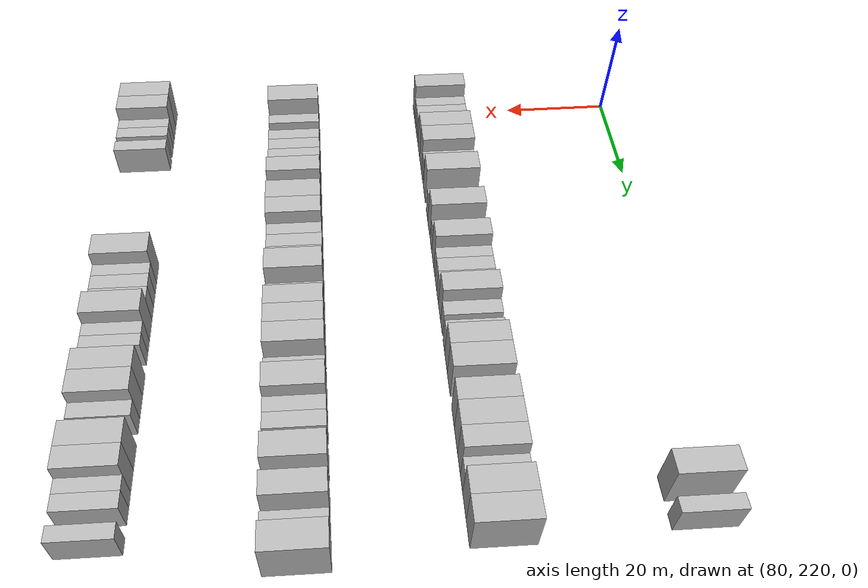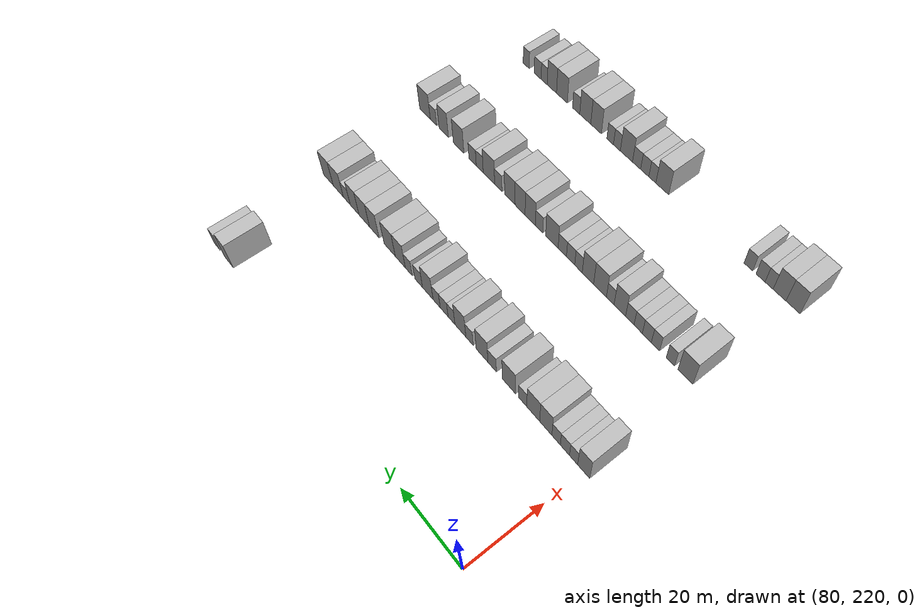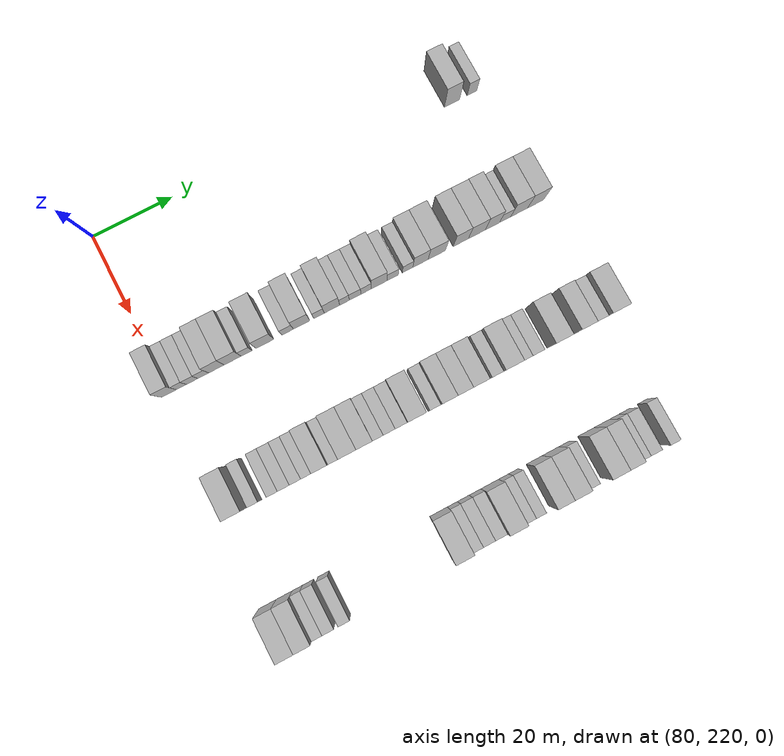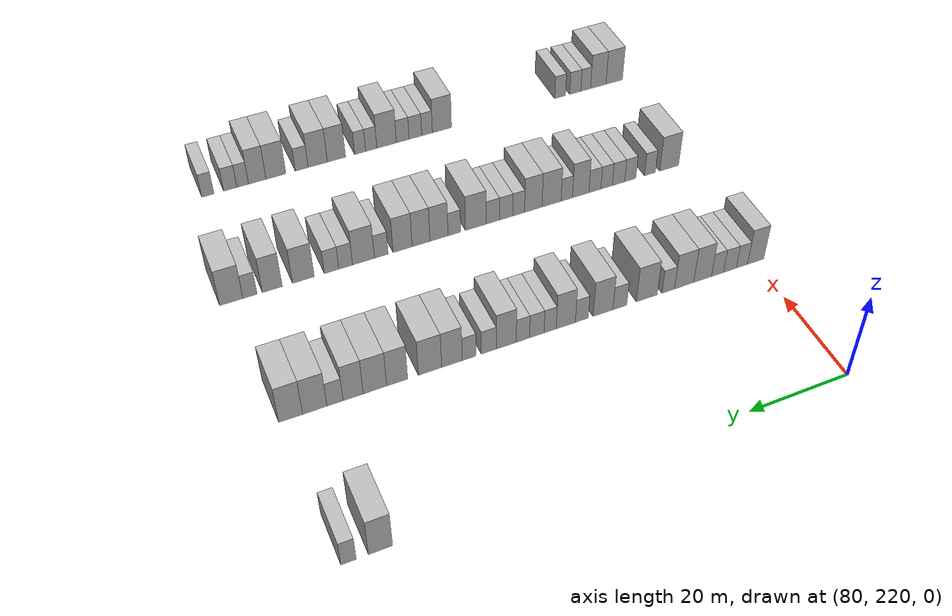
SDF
<sdf version="1.6">
 <world name="default">
  <model name="building_679">
   <static>1</static>
   <pose>85.0000 307.0177 0 0.000000 0.000000 0.000000</pose>
   <link name="link">
    <pose>0 0 4.50 0 0 0</pose>
    <collision name="collision"><geometry><box><size>10.0000 4.0016 9.0000</size></box></geometry></collision>
    <visual name="visual">
     <cast_shadows>0</cast_shadows>
     <geometry><box><size>10.0000 4.0016 9.0000</size></box></geometry>
     <material>
      <script>
       <uri>model://HANNAS_wall/materials/scripts</uri>
       <uri>model://HANNAS_wall/materials/textures</uri>
       <name>vrc/HANNAS_wall</name>
      </script>
     </material>
    </visual>
   </link>
  </model>
  <model name="building_680">
   <static>1</static>
   <pose>85.0000 312.2720 0 0.000000 0.000000 0.000000</pose>
   <link name="link">
    <pose>0 0 3.00 0 0 0</pose>
    <collision name="collision"><geometry><box><size>10.0000 2.5070 6.0000</size></box></geometry></collision>
    <visual name="visual">
     <cast_shadows>0</cast_shadows>
     <geometry><box><size>10.0000 2.5070 6.0000</size></box></geometry>
     <material>
      <script>
       <uri>model://HANNAS_wall/materials/scripts</uri>
       <uri>model://HANNAS_wall/materials/textures</uri>
       <name>vrc/HANNAS_wall</name>
      </script>
     </material>
    </visual>
   </link>
  </model>
  <model name="building_887">
   <static>1</static>
   <pose>115.0000 219.9786 0 0.000000 0.000000 0.000000</pose>
   <link name="link">
    <pose>0 0 4.50 0 0 0</pose>
    <collision name="collision"><geometry><box><size>10.0000 3.6479 9.0000</size></box></geometry></collision>
    <visual name="visual">
     <cast_shadows>0</cast_shadows>
     <geometry><box><size>10.0000 3.6479 9.0000</size></box></geometry>
     <material>
      <script>
       <uri>model://HANNAS_wall/materials/scripts</uri>
       <uri>model://HANNAS_wall/materials/textures</uri>
       <name>vrc/HANNAS_wall</name>
      </script>
     </material>
    </visual>
   </link>
  </model>
  <model name="building_888">
   <static>1</static>
   <pose>115.0000 223.0383 0 0.000000 0.000000 0.000000</pose>
   <link name="link">
    <pose>0 0 3.00 0 0 0</pose>
    <collision name="collision"><geometry><box><size>10.0000 2.4716 6.0000</size></box></geometry></collision>
    <visual name="visual">
     <cast_shadows>0</cast_shadows>
     <geometry><box><size>10.0000 2.4716 6.0000</size></box></geometry>
     <material>
      <script>
       <uri>model://HANNAS_wall/materials/scripts</uri>
       <uri>model://HANNAS_wall/materials/textures</uri>
       <name>vrc/HANNAS_wall</name>
      </script>
     </material>
    </visual>
   </link>
  </model>
  <model name="building_889">
   <static>1</static>
   <pose>115.0000 225.6785 0 0.000000 0.000000 0.000000</pose>
   <link name="link">
    <pose>0 0 3.00 0 0 0</pose>
    <collision name="collision"><geometry><box><size>10.0000 2.8088 6.0000</size></box></geometry></collision>
    <visual name="visual">
     <cast_shadows>0</cast_shadows>
     <geometry><box><size>10.0000 2.8088 6.0000</size></box></geometry>
     <material>
      <script>
       <uri>model://HANNAS_wall/materials/scripts</uri>
       <uri>model://HANNAS_wall/materials/textures</uri>
       <name>vrc/HANNAS_wall</name>
      </script>
     </material>
    </visual>
   </link>
  </model>
  <model name="building_890">
   <static>1</static>
   <pose>115.0000 228.3978 0 0.000000 0.000000 0.000000</pose>
   <link name="link">
    <pose>0 0 3.00 0 0 0</pose>
    <collision name="collision"><geometry><box><size>10.0000 2.6297 6.0000</size></box></geometry></collision>
    <visual name="visual">
     <cast_shadows>0</cast_shadows>
     <geometry><box><size>10.0000 2.6297 6.0000</size></box></geometry>
     <material>
      <script>
       <uri>model://HANNAS_wall/materials/scripts</uri>
       <uri>model://HANNAS_wall/materials/textures</uri>
       <name>vrc/HANNAS_wall</name>
      </script>
     </material>
    </visual>
   </link>
  </model>
  <model name="building_891">
   <static>1</static>
   <pose>115.0000 231.6309 0 0.000000 0.000000 0.000000</pose>
   <link name="link">
    <pose>0 0 4.50 0 0 0</pose>
    <collision name="collision"><geometry><box><size>10.0000 3.8366 9.0000</size></box></geometry></collision>
    <visual name="visual">
     <cast_shadows>0</cast_shadows>
     <geometry><box><size>10.0000 3.8366 9.0000</size></box></geometry>
     <material>
      <script>
       <uri>model://HANNAS_wall/materials/scripts</uri>
       <uri>model://HANNAS_wall/materials/textures</uri>
       <name>vrc/HANNAS_wall</name>
      </script>
     </material>
    </visual>
   </link>
  </model>
  <model name="building_892">
   <static>1</static>
   <pose>115.0000 235.6198 0 0.000000 0.000000 0.000000</pose>
   <link name="link">
    <pose>0 0 4.50 0 0 0</pose>
    <collision name="collision"><geometry><box><size>10.0000 4.1411 9.0000</size></box></geometry></collision>
    <visual name="visual">
     <cast_shadows>0</cast_shadows>
     <geometry><box><size>10.0000 4.1411 9.0000</size></box></geometry>
     <material>
      <script>
       <uri>model://HANNAS_wall/materials/scripts</uri>
       <uri>model://HANNAS_wall/materials/textures</uri>
       <name>vrc/HANNAS_wall</name>
      </script>
     </material>
    </visual>
   </link>
  </model>
  <model name="building_893">
   <static>1</static>
   <pose>115.0000 239.0259 0 0.000000 0.000000 0.000000</pose>
   <link name="link">
    <pose>0 0 3.00 0 0 0</pose>
    <collision name="collision"><geometry><box><size>10.0000 2.6713 6.0000</size></box></geometry></collision>
    <visual name="visual">
     <cast_shadows>0</cast_shadows>
     <geometry><box><size>10.0000 2.6713 6.0000</size></box></geometry>
     <material>
      <script>
       <uri>model://HANNAS_wall/materials/scripts</uri>
       <uri>model://HANNAS_wall/materials/textures</uri>
       <name>vrc/HANNAS_wall</name>
      </script>
     </material>
    </visual>
   </link>
  </model>
  <model name="building_894">
   <static>1</static>
   <pose>115.0000 243.5600 0 0.000000 0.000000 0.000000</pose>
   <link name="link">
    <pose>0 0 4.50 0 0 0</pose>
    <collision name="collision"><geometry><box><size>10.0000 4.3968 9.0000</size></box></geometry></collision>
    <visual name="visual">
     <cast_shadows>0</cast_shadows>
     <geometry><box><size>10.0000 4.3968 9.0000</size></box></geometry>
     <material>
      <script>
       <uri>model://HANNAS_wall/materials/scripts</uri>
       <uri>model://HANNAS_wall/materials/textures</uri>
       <name>vrc/HANNAS_wall</name>
      </script>
     </material>
    </visual>
   </link>
  </model>
  <model name="building_895">
   <static>1</static>
   <pose>115.0000 249.1997 0 0.000000 0.000000 0.000000</pose>
   <link name="link">
    <pose>0 0 3.00 0 0 0</pose>
    <collision name="collision"><geometry><box><size>10.0000 2.8827 6.0000</size></box></geometry></collision>
    <visual name="visual">
     <cast_shadows>0</cast_shadows>
     <geometry><box><size>10.0000 2.8827 6.0000</size></box></geometry>
     <material>
      <script>
       <uri>model://HANNAS_wall/materials/scripts</uri>
       <uri>model://HANNAS_wall/materials/textures</uri>
       <name>vrc/HANNAS_wall</name>
      </script>
     </material>
    </visual>
   </link>
  </model>
  <model name="building_896">
   <static>1</static>
   <pose>115.0000 252.6836 0 0.000000 0.000000 0.000000</pose>
   <link name="link">
    <pose>0 0 4.50 0 0 0</pose>
    <collision name="collision"><geometry><box><size>10.0000 4.0851 9.0000</size></box></geometry></collision>
    <visual name="visual">
     <cast_shadows>0</cast_shadows>
     <geometry><box><size>10.0000 4.0851 9.0000</size></box></geometry>
     <material>
      <script>
       <uri>model://HANNAS_wall/materials/scripts</uri>
       <uri>model://HANNAS_wall/materials/textures</uri>
       <name>vrc/HANNAS_wall</name>
      </script>
     </material>
    </visual>
   </link>
  </model>
  <model name="building_897">
   <static>1</static>
   <pose>115.0000 257.0357 0 0.000000 0.000000 0.000000</pose>
   <link name="link">
    <pose>0 0 3.00 0 0 0</pose>
    <collision name="collision"><geometry><box><size>10.0000 2.6191 6.0000</size></box></geometry></collision>
    <visual name="visual">
     <cast_shadows>0</cast_shadows>
     <geometry><box><size>10.0000 2.6191 6.0000</size></box></geometry>
     <material>
      <script>
       <uri>model://HANNAS_wall/materials/scripts</uri>
       <uri>model://HANNAS_wall/materials/textures</uri>
       <name>vrc/HANNAS_wall</name>
      </script>
     </material>
    </visual>
   </link>
  </model>
  <model name="building_898">
   <static>1</static>
   <pose>115.0000 260.2879 0 0.000000 0.000000 0.000000</pose>
   <link name="link">
    <pose>0 0 4.50 0 0 0</pose>
    <collision name="collision"><geometry><box><size>10.0000 3.8853 9.0000</size></box></geometry></collision>
    <visual name="visual">
     <cast_shadows>0</cast_shadows>
     <geometry><box><size>10.0000 3.8853 9.0000</size></box></geometry>
     <material>
      <script>
       <uri>model://HANNAS_wall/materials/scripts</uri>
       <uri>model://HANNAS_wall/materials/textures</uri>
       <name>vrc/HANNAS_wall</name>
      </script>
     </material>
    </visual>
   </link>
  </model>
  <model name="building_899">
   <static>1</static>
   <pose>115.0000 263.4455 0 0.000000 0.000000 0.000000</pose>
   <link name="link">
    <pose>0 0 3.00 0 0 0</pose>
    <collision name="collision"><geometry><box><size>10.0000 2.4300 6.0000</size></box></geometry></collision>
    <visual name="visual">
     <cast_shadows>0</cast_shadows>
     <geometry><box><size>10.0000 2.4300 6.0000</size></box></geometry>
     <material>
      <script>
       <uri>model://HANNAS_wall/materials/scripts</uri>
       <uri>model://HANNAS_wall/materials/textures</uri>
       <name>vrc/HANNAS_wall</name>
      </script>
     </material>
    </visual>
   </link>
  </model>
  <model name="building_900">
   <static>1</static>
   <pose>115.0000 266.1091 0 0.000000 0.000000 0.000000</pose>
   <link name="link">
    <pose>0 0 3.00 0 0 0</pose>
    <collision name="collision"><geometry><box><size>10.0000 2.8973 6.0000</size></box></geometry></collision>
    <visual name="visual">
     <cast_shadows>0</cast_shadows>
     <geometry><box><size>10.0000 2.8973 6.0000</size></box></geometry>
     <material>
      <script>
       <uri>model://HANNAS_wall/materials/scripts</uri>
       <uri>model://HANNAS_wall/materials/textures</uri>
       <name>vrc/HANNAS_wall</name>
      </script>
     </material>
    </visual>
   </link>
  </model>
  <model name="building_901">
   <static>1</static>
   <pose>115.0000 268.8768 0 0.000000 0.000000 0.000000</pose>
   <link name="link">
    <pose>0 0 3.00 0 0 0</pose>
    <collision name="collision"><geometry><box><size>10.0000 2.6381 6.0000</size></box></geometry></collision>
    <visual name="visual">
     <cast_shadows>0</cast_shadows>
     <geometry><box><size>10.0000 2.6381 6.0000</size></box></geometry>
     <material>
      <script>
       <uri>model://HANNAS_wall/materials/scripts</uri>
       <uri>model://HANNAS_wall/materials/textures</uri>
       <name>vrc/HANNAS_wall</name>
      </script>
     </material>
    </visual>
   </link>
  </model>
  <model name="building_902">
   <static>1</static>
   <pose>115.0000 272.1591 0 0.000000 0.000000 0.000000</pose>
   <link name="link">
    <pose>0 0 4.50 0 0 0</pose>
    <collision name="collision"><geometry><box><size>10.0000 3.9265 9.0000</size></box></geometry></collision>
    <visual name="visual">
     <cast_shadows>0</cast_shadows>
     <geometry><box><size>10.0000 3.9265 9.0000</size></box></geometry>
     <material>
      <script>
       <uri>model://HANNAS_wall/materials/scripts</uri>
       <uri>model://HANNAS_wall/materials/textures</uri>
       <name>vrc/HANNAS_wall</name>
      </script>
     </material>
    </visual>
   </link>
  </model>
  <model name="building_903">
   <static>1</static>
   <pose>115.0000 275.5704 0 0.000000 0.000000 0.000000</pose>
   <link name="link">
    <pose>0 0 3.00 0 0 0</pose>
    <collision name="collision"><geometry><box><size>10.0000 2.8961 6.0000</size></box></geometry></collision>
    <visual name="visual">
     <cast_shadows>0</cast_shadows>
     <geometry><box><size>10.0000 2.8961 6.0000</size></box></geometry>
     <material>
      <script>
       <uri>model://HANNAS_wall/materials/scripts</uri>
       <uri>model://HANNAS_wall/materials/textures</uri>
       <name>vrc/HANNAS_wall</name>
      </script>
     </material>
    </visual>
   </link>
  </model>
  <model name="building_904">
   <static>1</static>
   <pose>115.0000 279.3570 0 0.000000 0.000000 0.000000</pose>
   <link name="link">
    <pose>0 0 3.00 0 0 0</pose>
    <collision name="collision"><geometry><box><size>10.0000 2.6772 6.0000</size></box></geometry></collision>
    <visual name="visual">
     <cast_shadows>0</cast_shadows>
     <geometry><box><size>10.0000 2.6772 6.0000</size></box></geometry>
     <material>
      <script>
       <uri>model://HANNAS_wall/materials/scripts</uri>
       <uri>model://HANNAS_wall/materials/textures</uri>
       <name>vrc/HANNAS_wall</name>
      </script>
     </material>
    </visual>
   </link>
  </model>
  <model name="building_905">
   <static>1</static>
   <pose>115.0000 282.6576 0 0.000000 0.000000 0.000000</pose>
   <link name="link">
    <pose>0 0 4.50 0 0 0</pose>
    <collision name="collision"><geometry><box><size>10.0000 3.9240 9.0000</size></box></geometry></collision>
    <visual name="visual">
     <cast_shadows>0</cast_shadows>
     <geometry><box><size>10.0000 3.9240 9.0000</size></box></geometry>
     <material>
      <script>
       <uri>model://HANNAS_wall/materials/scripts</uri>
       <uri>model://HANNAS_wall/materials/textures</uri>
       <name>vrc/HANNAS_wall</name>
      </script>
     </material>
    </visual>
   </link>
  </model>
  <model name="building_906">
   <static>1</static>
   <pose>115.0000 286.8276 0 0.000000 0.000000 0.000000</pose>
   <link name="link">
    <pose>0 0 4.50 0 0 0</pose>
    <collision name="collision"><geometry><box><size>10.0000 4.4159 9.0000</size></box></geometry></collision>
    <visual name="visual">
     <cast_shadows>0</cast_shadows>
     <geometry><box><size>10.0000 4.4159 9.0000</size></box></geometry>
     <material>
      <script>
       <uri>model://HANNAS_wall/materials/scripts</uri>
       <uri>model://HANNAS_wall/materials/textures</uri>
       <name>vrc/HANNAS_wall</name>
      </script>
     </material>
    </visual>
   </link>
  </model>
  <model name="building_907">
   <static>1</static>
   <pose>115.0000 292.9873 0 0.000000 0.000000 0.000000</pose>
   <link name="link">
    <pose>0 0 4.50 0 0 0</pose>
    <collision name="collision"><geometry><box><size>10.0000 3.9035 9.0000</size></box></geometry></collision>
    <visual name="visual">
     <cast_shadows>0</cast_shadows>
     <geometry><box><size>10.0000 3.9035 9.0000</size></box></geometry>
     <material>
      <script>
       <uri>model://HANNAS_wall/materials/scripts</uri>
       <uri>model://HANNAS_wall/materials/textures</uri>
       <name>vrc/HANNAS_wall</name>
      </script>
     </material>
    </visual>
   </link>
  </model>
  <model name="building_908">
   <static>1</static>
   <pose>115.0000 297.1024 0 0.000000 0.000000 0.000000</pose>
   <link name="link">
    <pose>0 0 4.50 0 0 0</pose>
    <collision name="collision"><geometry><box><size>10.0000 4.3265 9.0000</size></box></geometry></collision>
    <visual name="visual">
     <cast_shadows>0</cast_shadows>
     <geometry><box><size>10.0000 4.3265 9.0000</size></box></geometry>
     <material>
      <script>
       <uri>model://HANNAS_wall/materials/scripts</uri>
       <uri>model://HANNAS_wall/materials/textures</uri>
       <name>vrc/HANNAS_wall</name>
      </script>
     </material>
    </visual>
   </link>
  </model>
  <model name="building_909">
   <static>1</static>
   <pose>115.0000 301.0999 0 0.000000 0.000000 0.000000</pose>
   <link name="link">
    <pose>0 0 4.50 0 0 0</pose>
    <collision name="collision"><geometry><box><size>10.0000 3.6685 9.0000</size></box></geometry></collision>
    <visual name="visual">
     <cast_shadows>0</cast_shadows>
     <geometry><box><size>10.0000 3.6685 9.0000</size></box></geometry>
     <material>
      <script>
       <uri>model://HANNAS_wall/materials/scripts</uri>
       <uri>model://HANNAS_wall/materials/textures</uri>
       <name>vrc/HANNAS_wall</name>
      </script>
     </material>
    </visual>
   </link>
  </model>
  <model name="building_910">
   <static>1</static>
   <pose>115.0000 304.3922 0 0.000000 0.000000 0.000000</pose>
   <link name="link">
    <pose>0 0 3.00 0 0 0</pose>
    <collision name="collision"><geometry><box><size>10.0000 2.9160 6.0000</size></box></geometry></collision>
    <visual name="visual">
     <cast_shadows>0</cast_shadows>
     <geometry><box><size>10.0000 2.9160 6.0000</size></box></geometry>
     <material>
      <script>
       <uri>model://HANNAS_wall/materials/scripts</uri>
       <uri>model://HANNAS_wall/materials/textures</uri>
       <name>vrc/HANNAS_wall</name>
      </script>
     </material>
    </visual>
   </link>
  </model>
  <model name="building_911">
   <static>1</static>
   <pose>115.0000 308.0257 0 0.000000 0.000000 0.000000</pose>
   <link name="link">
    <pose>0 0 4.50 0 0 0</pose>
    <collision name="collision"><geometry><box><size>10.0000 4.3510 9.0000</size></box></geometry></collision>
    <visual name="visual">
     <cast_shadows>0</cast_shadows>
     <geometry><box><size>10.0000 4.3510 9.0000</size></box></geometry>
     <material>
      <script>
       <uri>model://HANNAS_wall/materials/scripts</uri>
       <uri>model://HANNAS_wall/materials/textures</uri>
       <name>vrc/HANNAS_wall</name>
      </script>
     </material>
    </visual>
   </link>
  </model>
  <model name="building_912">
   <static>1</static>
   <pose>115.0000 312.3243 0 0.000000 0.000000 0.000000</pose>
   <link name="link">
    <pose>0 0 4.50 0 0 0</pose>
    <collision name="collision"><geometry><box><size>10.0000 4.2463 9.0000</size></box></geometry></collision>
    <visual name="visual">
     <cast_shadows>0</cast_shadows>
     <geometry><box><size>10.0000 4.2463 9.0000</size></box></geometry>
     <material>
      <script>
       <uri>model://HANNAS_wall/materials/scripts</uri>
       <uri>model://HANNAS_wall/materials/textures</uri>
       <name>vrc/HANNAS_wall</name>
      </script>
     </material>
    </visual>
   </link>
  </model>
  <model name="building_1124">
   <static>1</static>
   <pose>145.0000 221.9938 0 0.000000 0.000000 0.000000</pose>
   <link name="link">
    <pose>0 0 4.50 0 0 0</pose>
    <collision name="collision"><geometry><box><size>10.0000 4.4391 9.0000</size></box></geometry></collision>
    <visual name="visual">
     <cast_shadows>0</cast_shadows>
     <geometry><box><size>10.0000 4.4391 9.0000</size></box></geometry>
     <material>
      <script>
       <uri>model://HANNAS_wall/materials/scripts</uri>
       <uri>model://HANNAS_wall/materials/textures</uri>
       <name>vrc/HANNAS_wall</name>
      </script>
     </material>
    </visual>
   </link>
  </model>
  <model name="building_1125">
   <static>1</static>
   <pose>145.0000 226.4823 0 0.000000 0.000000 0.000000</pose>
   <link name="link">
    <pose>0 0 3.00 0 0 0</pose>
    <collision name="collision"><geometry><box><size>10.0000 2.5379 6.0000</size></box></geometry></collision>
    <visual name="visual">
     <cast_shadows>0</cast_shadows>
     <geometry><box><size>10.0000 2.5379 6.0000</size></box></geometry>
     <material>
      <script>
       <uri>model://HANNAS_wall/materials/scripts</uri>
       <uri>model://HANNAS_wall/materials/textures</uri>
       <name>vrc/HANNAS_wall</name>
      </script>
     </material>
    </visual>
   </link>
  </model>
  <model name="building_1126">
   <static>1</static>
   <pose>145.0000 231.0420 0 0.000000 0.000000 0.000000</pose>
   <link name="link">
    <pose>0 0 3.00 0 0 0</pose>
    <collision name="collision"><geometry><box><size>10.0000 2.5815 6.0000</size></box></geometry></collision>
    <visual name="visual">
     <cast_shadows>0</cast_shadows>
     <geometry><box><size>10.0000 2.5815 6.0000</size></box></geometry>
     <material>
      <script>
       <uri>model://HANNAS_wall/materials/scripts</uri>
       <uri>model://HANNAS_wall/materials/textures</uri>
       <name>vrc/HANNAS_wall</name>
      </script>
     </material>
    </visual>
   </link>
  </model>
  <model name="building_1127">
   <static>1</static>
   <pose>145.0000 233.7402 0 0.000000 0.000000 0.000000</pose>
   <link name="link">
    <pose>0 0 3.00 0 0 0</pose>
    <collision name="collision"><geometry><box><size>10.0000 2.8150 6.0000</size></box></geometry></collision>
    <visual name="visual">
     <cast_shadows>0</cast_shadows>
     <geometry><box><size>10.0000 2.8150 6.0000</size></box></geometry>
     <material>
      <script>
       <uri>model://HANNAS_wall/materials/scripts</uri>
       <uri>model://HANNAS_wall/materials/textures</uri>
       <name>vrc/HANNAS_wall</name>
      </script>
     </material>
    </visual>
   </link>
  </model>
  <model name="building_1128">
   <static>1</static>
   <pose>145.0000 236.4627 0 0.000000 0.000000 0.000000</pose>
   <link name="link">
    <pose>0 0 3.00 0 0 0</pose>
    <collision name="collision"><geometry><box><size>10.0000 2.6300 6.0000</size></box></geometry></collision>
    <visual name="visual">
     <cast_shadows>0</cast_shadows>
     <geometry><box><size>10.0000 2.6300 6.0000</size></box></geometry>
     <material>
      <script>
       <uri>model://HANNAS_wall/materials/scripts</uri>
       <uri>model://HANNAS_wall/materials/textures</uri>
       <name>vrc/HANNAS_wall</name>
      </script>
     </material>
    </visual>
   </link>
  </model>
  <model name="building_1129">
   <static>1</static>
   <pose>145.0000 239.1280 0 0.000000 0.000000 0.000000</pose>
   <link name="link">
    <pose>0 0 3.00 0 0 0</pose>
    <collision name="collision"><geometry><box><size>10.0000 2.7006 6.0000</size></box></geometry></collision>
    <visual name="visual">
     <cast_shadows>0</cast_shadows>
     <geometry><box><size>10.0000 2.7006 6.0000</size></box></geometry>
     <material>
      <script>
       <uri>model://HANNAS_wall/materials/scripts</uri>
       <uri>model://HANNAS_wall/materials/textures</uri>
       <name>vrc/HANNAS_wall</name>
      </script>
     </material>
    </visual>
   </link>
  </model>
  <model name="building_1130">
   <static>1</static>
   <pose>145.0000 242.3353 0 0.000000 0.000000 0.000000</pose>
   <link name="link">
    <pose>0 0 4.50 0 0 0</pose>
    <collision name="collision"><geometry><box><size>10.0000 3.7140 9.0000</size></box></geometry></collision>
    <visual name="visual">
     <cast_shadows>0</cast_shadows>
     <geometry><box><size>10.0000 3.7140 9.0000</size></box></geometry>
     <material>
      <script>
       <uri>model://HANNAS_wall/materials/scripts</uri>
       <uri>model://HANNAS_wall/materials/textures</uri>
       <name>vrc/HANNAS_wall</name>
      </script>
     </material>
    </visual>
   </link>
  </model>
  <model name="building_1131">
   <static>1</static>
   <pose>145.0000 245.4448 0 0.000000 0.000000 0.000000</pose>
   <link name="link">
    <pose>0 0 3.00 0 0 0</pose>
    <collision name="collision"><geometry><box><size>10.0000 2.5051 6.0000</size></box></geometry></collision>
    <visual name="visual">
     <cast_shadows>0</cast_shadows>
     <geometry><box><size>10.0000 2.5051 6.0000</size></box></geometry>
     <material>
      <script>
       <uri>model://HANNAS_wall/materials/scripts</uri>
       <uri>model://HANNAS_wall/materials/textures</uri>
       <name>vrc/HANNAS_wall</name>
      </script>
     </material>
    </visual>
   </link>
  </model>
  <model name="building_1132">
   <static>1</static>
   <pose>145.0000 248.8159 0 0.000000 0.000000 0.000000</pose>
   <link name="link">
    <pose>0 0 4.50 0 0 0</pose>
    <collision name="collision"><geometry><box><size>10.0000 4.2371 9.0000</size></box></geometry></collision>
    <visual name="visual">
     <cast_shadows>0</cast_shadows>
     <geometry><box><size>10.0000 4.2371 9.0000</size></box></geometry>
     <material>
      <script>
       <uri>model://HANNAS_wall/materials/scripts</uri>
       <uri>model://HANNAS_wall/materials/textures</uri>
       <name>vrc/HANNAS_wall</name>
      </script>
     </material>
    </visual>
   </link>
  </model>
  <model name="building_1133">
   <static>1</static>
   <pose>145.0000 252.8541 0 0.000000 0.000000 0.000000</pose>
   <link name="link">
    <pose>0 0 4.50 0 0 0</pose>
    <collision name="collision"><geometry><box><size>10.0000 3.8393 9.0000</size></box></geometry></collision>
    <visual name="visual">
     <cast_shadows>0</cast_shadows>
     <geometry><box><size>10.0000 3.8393 9.0000</size></box></geometry>
     <material>
      <script>
       <uri>model://HANNAS_wall/materials/scripts</uri>
       <uri>model://HANNAS_wall/materials/textures</uri>
       <name>vrc/HANNAS_wall</name>
      </script>
     </material>
    </visual>
   </link>
  </model>
  <model name="building_1134">
   <static>1</static>
   <pose>145.0000 256.0543 0 0.000000 0.000000 0.000000</pose>
   <link name="link">
    <pose>0 0 3.00 0 0 0</pose>
    <collision name="collision"><geometry><box><size>10.0000 2.5611 6.0000</size></box></geometry></collision>
    <visual name="visual">
     <cast_shadows>0</cast_shadows>
     <geometry><box><size>10.0000 2.5611 6.0000</size></box></geometry>
     <material>
      <script>
       <uri>model://HANNAS_wall/materials/scripts</uri>
       <uri>model://HANNAS_wall/materials/textures</uri>
       <name>vrc/HANNAS_wall</name>
      </script>
     </material>
    </visual>
   </link>
  </model>
  <model name="building_1135">
   <static>1</static>
   <pose>145.0000 258.7648 0 0.000000 0.000000 0.000000</pose>
   <link name="link">
    <pose>0 0 3.00 0 0 0</pose>
    <collision name="collision"><geometry><box><size>10.0000 2.8600 6.0000</size></box></geometry></collision>
    <visual name="visual">
     <cast_shadows>0</cast_shadows>
     <geometry><box><size>10.0000 2.8600 6.0000</size></box></geometry>
     <material>
      <script>
       <uri>model://HANNAS_wall/materials/scripts</uri>
       <uri>model://HANNAS_wall/materials/textures</uri>
       <name>vrc/HANNAS_wall</name>
      </script>
     </material>
    </visual>
   </link>
  </model>
  <model name="building_1136">
   <static>1</static>
   <pose>145.0000 261.6476 0 0.000000 0.000000 0.000000</pose>
   <link name="link">
    <pose>0 0 3.00 0 0 0</pose>
    <collision name="collision"><geometry><box><size>10.0000 2.9057 6.0000</size></box></geometry></collision>
    <visual name="visual">
     <cast_shadows>0</cast_shadows>
     <geometry><box><size>10.0000 2.9057 6.0000</size></box></geometry>
     <material>
      <script>
       <uri>model://HANNAS_wall/materials/scripts</uri>
       <uri>model://HANNAS_wall/materials/textures</uri>
       <name>vrc/HANNAS_wall</name>
      </script>
     </material>
    </visual>
   </link>
  </model>
  <model name="building_1137">
   <static>1</static>
   <pose>145.0000 265.3010 0 0.000000 0.000000 0.000000</pose>
   <link name="link">
    <pose>0 0 4.50 0 0 0</pose>
    <collision name="collision"><geometry><box><size>10.0000 4.4010 9.0000</size></box></geometry></collision>
    <visual name="visual">
     <cast_shadows>0</cast_shadows>
     <geometry><box><size>10.0000 4.4010 9.0000</size></box></geometry>
     <material>
      <script>
       <uri>model://HANNAS_wall/materials/scripts</uri>
       <uri>model://HANNAS_wall/materials/textures</uri>
       <name>vrc/HANNAS_wall</name>
      </script>
     </material>
    </visual>
   </link>
  </model>
  <model name="building_1138">
   <static>1</static>
   <pose>145.0000 269.8400 0 0.000000 0.000000 0.000000</pose>
   <link name="link">
    <pose>0 0 3.00 0 0 0</pose>
    <collision name="collision"><geometry><box><size>10.0000 2.6769 6.0000</size></box></geometry></collision>
    <visual name="visual">
     <cast_shadows>0</cast_shadows>
     <geometry><box><size>10.0000 2.6769 6.0000</size></box></geometry>
     <material>
      <script>
       <uri>model://HANNAS_wall/materials/scripts</uri>
       <uri>model://HANNAS_wall/materials/textures</uri>
       <name>vrc/HANNAS_wall</name>
      </script>
     </material>
    </visual>
   </link>
  </model>
  <model name="building_1139">
   <static>1</static>
   <pose>145.0000 273.0692 0 0.000000 0.000000 0.000000</pose>
   <link name="link">
    <pose>0 0 4.50 0 0 0</pose>
    <collision name="collision"><geometry><box><size>10.0000 3.7814 9.0000</size></box></geometry></collision>
    <visual name="visual">
     <cast_shadows>0</cast_shadows>
     <geometry><box><size>10.0000 3.7814 9.0000</size></box></geometry>
     <material>
      <script>
       <uri>model://HANNAS_wall/materials/scripts</uri>
       <uri>model://HANNAS_wall/materials/textures</uri>
       <name>vrc/HANNAS_wall</name>
      </script>
     </material>
    </visual>
   </link>
  </model>
  <model name="building_1140">
   <static>1</static>
   <pose>145.0000 276.8075 0 0.000000 0.000000 0.000000</pose>
   <link name="link">
    <pose>0 0 4.50 0 0 0</pose>
    <collision name="collision"><geometry><box><size>10.0000 3.6954 9.0000</size></box></geometry></collision>
    <visual name="visual">
     <cast_shadows>0</cast_shadows>
     <geometry><box><size>10.0000 3.6954 9.0000</size></box></geometry>
     <material>
      <script>
       <uri>model://HANNAS_wall/materials/scripts</uri>
       <uri>model://HANNAS_wall/materials/textures</uri>
       <name>vrc/HANNAS_wall</name>
      </script>
     </material>
    </visual>
   </link>
  </model>
  <model name="building_1141">
   <static>1</static>
   <pose>145.0000 280.6221 0 0.000000 0.000000 0.000000</pose>
   <link name="link">
    <pose>0 0 4.50 0 0 0</pose>
    <collision name="collision"><geometry><box><size>10.0000 3.9337 9.0000</size></box></geometry></collision>
    <visual name="visual">
     <cast_shadows>0</cast_shadows>
     <geometry><box><size>10.0000 3.9337 9.0000</size></box></geometry>
     <material>
      <script>
       <uri>model://HANNAS_wall/materials/scripts</uri>
       <uri>model://HANNAS_wall/materials/textures</uri>
       <name>vrc/HANNAS_wall</name>
      </script>
     </material>
    </visual>
   </link>
  </model>
  <model name="building_1142">
   <static>1</static>
   <pose>145.0000 284.9910 0 0.000000 0.000000 0.000000</pose>
   <link name="link">
    <pose>0 0 3.00 0 0 0</pose>
    <collision name="collision"><geometry><box><size>10.0000 2.8040 6.0000</size></box></geometry></collision>
    <visual name="visual">
     <cast_shadows>0</cast_shadows>
     <geometry><box><size>10.0000 2.8040 6.0000</size></box></geometry>
     <material>
      <script>
       <uri>model://HANNAS_wall/materials/scripts</uri>
       <uri>model://HANNAS_wall/materials/textures</uri>
       <name>vrc/HANNAS_wall</name>
      </script>
     </material>
    </visual>
   </link>
  </model>
  <model name="building_1143">
   <static>1</static>
   <pose>145.0000 288.6077 0 0.000000 0.000000 0.000000</pose>
   <link name="link">
    <pose>0 0 4.50 0 0 0</pose>
    <collision name="collision"><geometry><box><size>10.0000 4.4293 9.0000</size></box></geometry></collision>
    <visual name="visual">
     <cast_shadows>0</cast_shadows>
     <geometry><box><size>10.0000 4.4293 9.0000</size></box></geometry>
     <material>
      <script>
       <uri>model://HANNAS_wall/materials/scripts</uri>
       <uri>model://HANNAS_wall/materials/textures</uri>
       <name>vrc/HANNAS_wall</name>
      </script>
     </material>
    </visual>
   </link>
  </model>
  <model name="building_1144">
   <static>1</static>
   <pose>145.0000 292.1873 0 0.000000 0.000000 0.000000</pose>
   <link name="link">
    <pose>0 0 3.00 0 0 0</pose>
    <collision name="collision"><geometry><box><size>10.0000 2.7299 6.0000</size></box></geometry></collision>
    <visual name="visual">
     <cast_shadows>0</cast_shadows>
     <geometry><box><size>10.0000 2.7299 6.0000</size></box></geometry>
     <material>
      <script>
       <uri>model://HANNAS_wall/materials/scripts</uri>
       <uri>model://HANNAS_wall/materials/textures</uri>
       <name>vrc/HANNAS_wall</name>
      </script>
     </material>
    </visual>
   </link>
  </model>
  <model name="building_1145">
   <static>1</static>
   <pose>145.0000 295.0022 0 0.000000 0.000000 0.000000</pose>
   <link name="link">
    <pose>0 0 3.00 0 0 0</pose>
    <collision name="collision"><geometry><box><size>10.0000 2.8998 6.0000</size></box></geometry></collision>
    <visual name="visual">
     <cast_shadows>0</cast_shadows>
     <geometry><box><size>10.0000 2.8998 6.0000</size></box></geometry>
     <material>
      <script>
       <uri>model://HANNAS_wall/materials/scripts</uri>
       <uri>model://HANNAS_wall/materials/textures</uri>
       <name>vrc/HANNAS_wall</name>
      </script>
     </material>
    </visual>
   </link>
  </model>
  <model name="building_1146">
   <static>1</static>
   <pose>145.0000 300.5840 0 0.000000 0.000000 0.000000</pose>
   <link name="link">
    <pose>0 0 4.50 0 0 0</pose>
    <collision name="collision"><geometry><box><size>10.0000 4.2638 9.0000</size></box></geometry></collision>
    <visual name="visual">
     <cast_shadows>0</cast_shadows>
     <geometry><box><size>10.0000 4.2638 9.0000</size></box></geometry>
     <material>
      <script>
       <uri>model://HANNAS_wall/materials/scripts</uri>
       <uri>model://HANNAS_wall/materials/textures</uri>
       <name>vrc/HANNAS_wall</name>
      </script>
     </material>
    </visual>
   </link>
  </model>
  <model name="building_1147">
   <static>1</static>
   <pose>145.0000 306.6490 0 0.000000 0.000000 0.000000</pose>
   <link name="link">
    <pose>0 0 4.50 0 0 0</pose>
    <collision name="collision"><geometry><box><size>10.0000 3.8661 9.0000</size></box></geometry></collision>
    <visual name="visual">
     <cast_shadows>0</cast_shadows>
     <geometry><box><size>10.0000 3.8661 9.0000</size></box></geometry>
     <material>
      <script>
       <uri>model://HANNAS_wall/materials/scripts</uri>
       <uri>model://HANNAS_wall/materials/textures</uri>
       <name>vrc/HANNAS_wall</name>
      </script>
     </material>
    </visual>
   </link>
  </model>
  <model name="building_1148">
   <static>1</static>
   <pose>145.0000 310.9250 0 0.000000 0.000000 0.000000</pose>
   <link name="link">
    <pose>0 0 3.00 0 0 0</pose>
    <collision name="collision"><geometry><box><size>10.0000 2.6859 6.0000</size></box></geometry></collision>
    <visual name="visual">
     <cast_shadows>0</cast_shadows>
     <geometry><box><size>10.0000 2.6859 6.0000</size></box></geometry>
     <material>
      <script>
       <uri>model://HANNAS_wall/materials/scripts</uri>
       <uri>model://HANNAS_wall/materials/textures</uri>
       <name>vrc/HANNAS_wall</name>
      </script>
     </material>
    </visual>
   </link>
  </model>
  <model name="building_1149">
   <static>1</static>
   <pose>145.0000 314.5000 0 0.000000 0.000000 0.000000</pose>
   <link name="link">
    <pose>0 0 4.50 0 0 0</pose>
    <collision name="collision"><geometry><box><size>10.0000 4.4641 9.0000</size></box></geometry></collision>
    <visual name="visual">
     <cast_shadows>0</cast_shadows>
     <geometry><box><size>10.0000 4.4641 9.0000</size></box></geometry>
     <material>
      <script>
       <uri>model://HANNAS_wall/materials/scripts</uri>
       <uri>model://HANNAS_wall/materials/textures</uri>
       <name>vrc/HANNAS_wall</name>
      </script>
     </material>
    </visual>
   </link>
  </model>
  <model name="building_1356">
   <static>1</static>
   <pose>175.0000 219.0761 0 0.000000 0.000000 0.000000</pose>
   <link name="link">
    <pose>0 0 4.50 0 0 0</pose>
    <collision name="collision"><geometry><box><size>10.0000 4.1216 9.0000</size></box></geometry></collision>
    <visual name="visual">
     <cast_shadows>0</cast_shadows>
     <geometry><box><size>10.0000 4.1216 9.0000</size></box></geometry>
     <material>
      <script>
       <uri>model://HANNAS_wall/materials/scripts</uri>
       <uri>model://HANNAS_wall/materials/textures</uri>
       <name>vrc/HANNAS_wall</name>
      </script>
     </material>
    </visual>
   </link>
  </model>
  <model name="building_1357">
   <static>1</static>
   <pose>175.0000 223.0443 0 0.000000 0.000000 0.000000</pose>
   <link name="link">
    <pose>0 0 4.50 0 0 0</pose>
    <collision name="collision"><geometry><box><size>10.0000 3.8148 9.0000</size></box></geometry></collision>
    <visual name="visual">
     <cast_shadows>0</cast_shadows>
     <geometry><box><size>10.0000 3.8148 9.0000</size></box></geometry>
     <material>
      <script>
       <uri>model://HANNAS_wall/materials/scripts</uri>
       <uri>model://HANNAS_wall/materials/textures</uri>
       <name>vrc/HANNAS_wall</name>
      </script>
     </material>
    </visual>
   </link>
  </model>
  <model name="building_1358">
   <static>1</static>
   <pose>175.0000 226.1546 0 0.000000 0.000000 0.000000</pose>
   <link name="link">
    <pose>0 0 3.00 0 0 0</pose>
    <collision name="collision"><geometry><box><size>10.0000 2.4058 6.0000</size></box></geometry></collision>
    <visual name="visual">
     <cast_shadows>0</cast_shadows>
     <geometry><box><size>10.0000 2.4058 6.0000</size></box></geometry>
     <material>
      <script>
       <uri>model://HANNAS_wall/materials/scripts</uri>
       <uri>model://HANNAS_wall/materials/textures</uri>
       <name>vrc/HANNAS_wall</name>
      </script>
     </material>
    </visual>
   </link>
  </model>
  <model name="building_1359">
   <static>1</static>
   <pose>175.0000 228.7219 0 0.000000 0.000000 0.000000</pose>
   <link name="link">
    <pose>0 0 3.00 0 0 0</pose>
    <collision name="collision"><geometry><box><size>10.0000 2.7288 6.0000</size></box></geometry></collision>
    <visual name="visual">
     <cast_shadows>0</cast_shadows>
     <geometry><box><size>10.0000 2.7288 6.0000</size></box></geometry>
     <material>
      <script>
       <uri>model://HANNAS_wall/materials/scripts</uri>
       <uri>model://HANNAS_wall/materials/textures</uri>
       <name>vrc/HANNAS_wall</name>
      </script>
     </material>
    </visual>
   </link>
  </model>
  <model name="building_1360">
   <static>1</static>
   <pose>175.0000 232.4173 0 0.000000 0.000000 0.000000</pose>
   <link name="link">
    <pose>0 0 3.00 0 0 0</pose>
    <collision name="collision"><geometry><box><size>10.0000 2.6620 6.0000</size></box></geometry></collision>
    <visual name="visual">
     <cast_shadows>0</cast_shadows>
     <geometry><box><size>10.0000 2.6620 6.0000</size></box></geometry>
     <material>
      <script>
       <uri>model://HANNAS_wall/materials/scripts</uri>
       <uri>model://HANNAS_wall/materials/textures</uri>
       <name>vrc/HANNAS_wall</name>
      </script>
     </material>
    </visual>
   </link>
  </model>
  <model name="building_1361">
   <static>1</static>
   <pose>175.0000 260.3329 0 0.000000 0.000000 0.000000</pose>
   <link name="link">
    <pose>0 0 4.50 0 0 0</pose>
    <collision name="collision"><geometry><box><size>10.0000 4.3897 9.0000</size></box></geometry></collision>
    <visual name="visual">
     <cast_shadows>0</cast_shadows>
     <geometry><box><size>10.0000 4.3897 9.0000</size></box></geometry>
     <material>
      <script>
       <uri>model://HANNAS_wall/materials/scripts</uri>
       <uri>model://HANNAS_wall/materials/textures</uri>
       <name>vrc/HANNAS_wall</name>
      </script>
     </material>
    </visual>
   </link>
  </model>
  <model name="building_1362">
   <static>1</static>
   <pose>175.0000 263.7438 0 0.000000 0.000000 0.000000</pose>
   <link name="link">
    <pose>0 0 3.00 0 0 0</pose>
    <collision name="collision"><geometry><box><size>10.0000 2.4322 6.0000</size></box></geometry></collision>
    <visual name="visual">
     <cast_shadows>0</cast_shadows>
     <geometry><box><size>10.0000 2.4322 6.0000</size></box></geometry>
     <material>
      <script>
       <uri>model://HANNAS_wall/materials/scripts</uri>
       <uri>model://HANNAS_wall/materials/textures</uri>
       <name>vrc/HANNAS_wall</name>
      </script>
     </material>
    </visual>
   </link>
  </model>
  <model name="building_1363">
   <static>1</static>
   <pose>175.0000 266.3902 0 0.000000 0.000000 0.000000</pose>
   <link name="link">
    <pose>0 0 3.00 0 0 0</pose>
    <collision name="collision"><geometry><box><size>10.0000 2.8607 6.0000</size></box></geometry></collision>
    <visual name="visual">
     <cast_shadows>0</cast_shadows>
     <geometry><box><size>10.0000 2.8607 6.0000</size></box></geometry>
     <material>
      <script>
       <uri>model://HANNAS_wall/materials/scripts</uri>
       <uri>model://HANNAS_wall/materials/textures</uri>
       <name>vrc/HANNAS_wall</name>
      </script>
     </material>
    </visual>
   </link>
  </model>
  <model name="building_1364">
   <static>1</static>
   <pose>175.0000 269.2542 0 0.000000 0.000000 0.000000</pose>
   <link name="link">
    <pose>0 0 3.00 0 0 0</pose>
    <collision name="collision"><geometry><box><size>10.0000 2.8673 6.0000</size></box></geometry></collision>
    <visual name="visual">
     <cast_shadows>0</cast_shadows>
     <geometry><box><size>10.0000 2.8673 6.0000</size></box></geometry>
     <material>
      <script>
       <uri>model://HANNAS_wall/materials/scripts</uri>
       <uri>model://HANNAS_wall/materials/textures</uri>
       <name>vrc/HANNAS_wall</name>
      </script>
     </material>
    </visual>
   </link>
  </model>
  <model name="building_1365">
   <static>1</static>
   <pose>175.0000 272.8678 0 0.000000 0.000000 0.000000</pose>
   <link name="link">
    <pose>0 0 4.50 0 0 0</pose>
    <collision name="collision"><geometry><box><size>10.0000 4.3597 9.0000</size></box></geometry></collision>
    <visual name="visual">
     <cast_shadows>0</cast_shadows>
     <geometry><box><size>10.0000 4.3597 9.0000</size></box></geometry>
     <material>
      <script>
       <uri>model://HANNAS_wall/materials/scripts</uri>
       <uri>model://HANNAS_wall/materials/textures</uri>
       <name>vrc/HANNAS_wall</name>
      </script>
     </material>
    </visual>
   </link>
  </model>
  <model name="building_1366">
   <static>1</static>
   <pose>175.0000 276.2902 0 0.000000 0.000000 0.000000</pose>
   <link name="link">
    <pose>0 0 3.00 0 0 0</pose>
    <collision name="collision"><geometry><box><size>10.0000 2.4851 6.0000</size></box></geometry></collision>
    <visual name="visual">
     <cast_shadows>0</cast_shadows>
     <geometry><box><size>10.0000 2.4851 6.0000</size></box></geometry>
     <material>
      <script>
       <uri>model://HANNAS_wall/materials/scripts</uri>
       <uri>model://HANNAS_wall/materials/textures</uri>
       <name>vrc/HANNAS_wall</name>
      </script>
     </material>
    </visual>
   </link>
  </model>
  <model name="building_1367">
   <static>1</static>
   <pose>175.0000 278.7416 0 0.000000 0.000000 0.000000</pose>
   <link name="link">
    <pose>0 0 3.00 0 0 0</pose>
    <collision name="collision"><geometry><box><size>10.0000 2.4176 6.0000</size></box></geometry></collision>
    <visual name="visual">
     <cast_shadows>0</cast_shadows>
     <geometry><box><size>10.0000 2.4176 6.0000</size></box></geometry>
     <material>
      <script>
       <uri>model://HANNAS_wall/materials/scripts</uri>
       <uri>model://HANNAS_wall/materials/textures</uri>
       <name>vrc/HANNAS_wall</name>
      </script>
     </material>
    </visual>
   </link>
  </model>
  <model name="building_1368">
   <static>1</static>
   <pose>175.0000 283.9363 0 0.000000 0.000000 0.000000</pose>
   <link name="link">
    <pose>0 0 4.50 0 0 0</pose>
    <collision name="collision"><geometry><box><size>10.0000 3.9719 9.0000</size></box></geometry></collision>
    <visual name="visual">
     <cast_shadows>0</cast_shadows>
     <geometry><box><size>10.0000 3.9719 9.0000</size></box></geometry>
     <material>
      <script>
       <uri>model://HANNAS_wall/materials/scripts</uri>
       <uri>model://HANNAS_wall/materials/textures</uri>
       <name>vrc/HANNAS_wall</name>
      </script>
     </material>
    </visual>
   </link>
  </model>
  <model name="building_1369">
   <static>1</static>
   <pose>175.0000 288.0062 0 0.000000 0.000000 0.000000</pose>
   <link name="link">
    <pose>0 0 4.50 0 0 0</pose>
    <collision name="collision"><geometry><box><size>10.0000 4.1677 9.0000</size></box></geometry></collision>
    <visual name="visual">
     <cast_shadows>0</cast_shadows>
     <geometry><box><size>10.0000 4.1677 9.0000</size></box></geometry>
     <material>
      <script>
       <uri>model://HANNAS_wall/materials/scripts</uri>
       <uri>model://HANNAS_wall/materials/textures</uri>
       <name>vrc/HANNAS_wall</name>
      </script>
     </material>
    </visual>
   </link>
  </model>
  <model name="building_1370">
   <static>1</static>
   <pose>175.0000 291.4668 0 0.000000 0.000000 0.000000</pose>
   <link name="link">
    <pose>0 0 3.00 0 0 0</pose>
    <collision name="collision"><geometry><box><size>10.0000 2.7536 6.0000</size></box></geometry></collision>
    <visual name="visual">
     <cast_shadows>0</cast_shadows>
     <geometry><box><size>10.0000 2.7536 6.0000</size></box></geometry>
     <material>
      <script>
       <uri>model://HANNAS_wall/materials/scripts</uri>
       <uri>model://HANNAS_wall/materials/textures</uri>
       <name>vrc/HANNAS_wall</name>
      </script>
     </material>
    </visual>
   </link>
  </model>
  <model name="building_1371">
   <static>1</static>
   <pose>175.0000 296.9512 0 0.000000 0.000000 0.000000</pose>
   <link name="link">
    <pose>0 0 4.50 0 0 0</pose>
    <collision name="collision"><geometry><box><size>10.0000 4.2152 9.0000</size></box></geometry></collision>
    <visual name="visual">
     <cast_shadows>0</cast_shadows>
     <geometry><box><size>10.0000 4.2152 9.0000</size></box></geometry>
     <material>
      <script>
       <uri>model://HANNAS_wall/materials/scripts</uri>
       <uri>model://HANNAS_wall/materials/textures</uri>
       <name>vrc/HANNAS_wall</name>
      </script>
     </material>
    </visual>
   </link>
  </model>
  <model name="building_1372">
   <static>1</static>
   <pose>175.0000 300.8927 0 0.000000 0.000000 0.000000</pose>
   <link name="link">
    <pose>0 0 4.50 0 0 0</pose>
    <collision name="collision"><geometry><box><size>10.0000 3.6678 9.0000</size></box></geometry></collision>
    <visual name="visual">
     <cast_shadows>0</cast_shadows>
     <geometry><box><size>10.0000 3.6678 9.0000</size></box></geometry>
     <material>
      <script>
       <uri>model://HANNAS_wall/materials/scripts</uri>
       <uri>model://HANNAS_wall/materials/textures</uri>
       <name>vrc/HANNAS_wall</name>
      </script>
     </material>
    </visual>
   </link>
  </model>
  <model name="building_1373">
   <static>1</static>
   <pose>175.0000 303.9373 0 0.000000 0.000000 0.000000</pose>
   <link name="link">
    <pose>0 0 3.00 0 0 0</pose>
    <collision name="collision"><geometry><box><size>10.0000 2.4214 6.0000</size></box></geometry></collision>
    <visual name="visual">
     <cast_shadows>0</cast_shadows>
     <geometry><box><size>10.0000 2.4214 6.0000</size></box></geometry>
     <material>
      <script>
       <uri>model://HANNAS_wall/materials/scripts</uri>
       <uri>model://HANNAS_wall/materials/textures</uri>
       <name>vrc/HANNAS_wall</name>
      </script>
     </material>
    </visual>
   </link>
  </model>
  <model name="building_1374">
   <static>1</static>
   <pose>175.0000 306.5320 0 0.000000 0.000000 0.000000</pose>
   <link name="link">
    <pose>0 0 3.00 0 0 0</pose>
    <collision name="collision"><geometry><box><size>10.0000 2.7680 6.0000</size></box></geometry></collision>
    <visual name="visual">
     <cast_shadows>0</cast_shadows>
     <geometry><box><size>10.0000 2.7680 6.0000</size></box></geometry>
     <material>
      <script>
       <uri>model://HANNAS_wall/materials/scripts</uri>
       <uri>model://HANNAS_wall/materials/textures</uri>
       <name>vrc/HANNAS_wall</name>
      </script>
     </material>
    </visual>
   </link>
  </model>
  <model name="building_1375">
   <static>1</static>
   <pose>175.0000 311.1699 0 0.000000 0.000000 0.000000</pose>
   <link name="link">
    <pose>0 0 3.00 0 0 0</pose>
    <collision name="collision"><geometry><box><size>10.0000 2.5079 6.0000</size></box></geometry></collision>
    <visual name="visual">
     <cast_shadows>0</cast_shadows>
     <geometry><box><size>10.0000 2.5079 6.0000</size></box></geometry>
     <material>
      <script>
       <uri>model://HANNAS_wall/materials/scripts</uri>
       <uri>model://HANNAS_wall/materials/textures</uri>
       <name>vrc/HANNAS_wall</name>
      </script>
     </material>
    </visual>
   </link>
  </model>
 </world>
</sdf>
